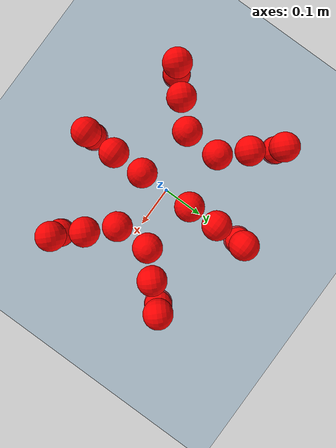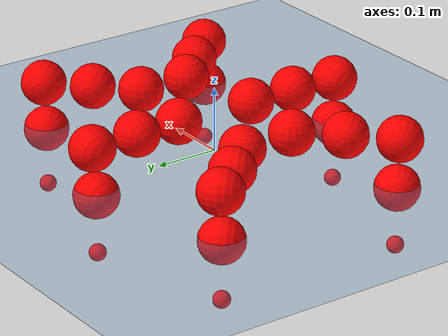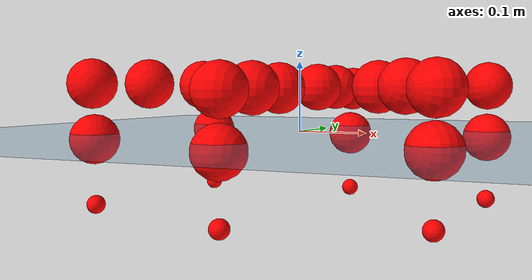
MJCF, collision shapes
<mujoco model="Golem">
  <compiler angle="radian" assetdir="assets" balanceinertia="true" inertiafromgeom="false"/>

  <option timestep="0.005" density="1.2" viscosity="2e-05"/>

  <size nkey="1"/>

  <visual>
    <quality shadowsize="8192"/>
    <map shadowclip="0.5"/>
  </visual>

  <default>
    <default class="/">
      <joint armature="0.01" damping="0.01" frictionloss="0.01"/>
      <geom contype="0" conaffinity="0" group="1" solref="-1000 -80"/>
      <site size="0.01 0.005 0.005" group="5"/>
      <general forcelimited="true" biastype="affine" gainprm="25" biasprm="0 -25 -0.5"/>
      <default class="visual">
        <geom type="mesh" group="2"/>
      </default>
      <default class="collision">
        <geom group="3"/>
      </default>
      <default class="foot">
        <geom size="0.01 0 0" condim="6" group="4" priority="1" solimp="0.015 1 0.01"/>
      </default>
      <default class="reward_collision_sphere">
        <geom group="5" rgba="1 0 0 1"/>
      </default>
    </default>
  </default>

  <asset>
    <texture type="skybox" colorspace="auto" name="//unnamed_texture_0" builtin="gradient" rgb1="0.95 0.95 0.95" rgb2="0.95 0.95 0.95" width="100" height="600"/>
    <texture type="2d" colorspace="auto" name="texplane" builtin="checker" rgb1="0.345 0.575 0.748" rgb2="0.345 0.575 0.748" markrgb="1 1 1" width="512" height="512"/>
    <material name="MatPlane" class="/" texture="texplane" texuniform="true" texrepeat="2 2" specular="0.9"/>
    <mesh name="body" class="/" file="body.stl" scale="0.001 0.001 0.001"/>
    <mesh name="coxa" class="/" file="coxa.stl" scale="0.001 0.001 0.001"/>
    <mesh name="femur" class="/" file="femur.stl" scale="0.001 0.001 0.001"/>
    <mesh name="tibia" class="/" file="tibia.stl" scale="0.001 0.001 0.001"/>
    <mesh name="tarsus" class="/" file="tarsus.stl" scale="0.001 0.001 0.001"/>
  </asset>

  <worldbody>
    <geom name="floor" class="/" size="100 100 0.125" type="plane" group="0" material="MatPlane"/>
    <light name="toplight_shadow" class="/" pos="0 0 5" dir="0.0990148 0.0990148 -0.990148" type="directional" ambient="0.04 0.04 0.04" diffuse="0.55 0.55 0.55" specular="0.12 0.12 0.12"/>
    <light name="toplight_fill" class="/" pos="0 0 5" dir="0.0990148 0.0990148 -0.990148" type="directional" castshadow="false" ambient="0.04 0.04 0.04" diffuse="0.3 0.3 0.3" specular="0.08 0.08 0.08"/>
    <body name="trunk" pos="-0.000297167 -0.000140291 -0.00206013" quat="0.999999 0.000522948 0.000505243 -0.000963814">
      <inertial pos="0.000210242 0.0023591 -0.00428306" quat="0.999944 -0.00942721 0.0024494 0.0040823" mass="2.50599" diaginertia="0.00471833 0.00189547 0.0130836"/>
      <joint name="//unnamed_joint_0" type="free"/>
      <geom name="//unnamed_geom_1" class="/" pos="0 0 0.0670018" quat="1 0 0 0" type="mesh" rgba="0.9 0.9 0.9 1" mesh="body"/>
      <site name="imu" class="/" pos="0.0996346 0.00101902 0.117343" size="0.00873174"/>
      <camera name="track" class="/" pos="0 -1.43545 0" quat="0.707107 0.707107 0 0" mode="trackcom"/>
      <camera name="ego_camera" class="/" pos="0.111136 0 0.10469" quat="-0.5 -0.5 0.5 0.5"/>
      <body name="coxa_RR" pos="-0.153989 -0.0585989 0.0688319" quat="0.38249 0.000520197 8.48381e-05 -0.923959">
        <inertial pos="-0.00170093 -0.00269917 -0.000765176" quat="0.999923 -0.0111666 0.00495103 -0.00222302" mass="0.137406" diaginertia="0.00454017 0.00189059 0.0124109"/>
        <joint name="coxa_joint_RR" class="/" pos="0 0 0" axis="-0.00464165 0.00829841 -0.999955" range="-3.18737 3.13375" armature="0.00825873" damping="0.0185236" frictionloss="0.00981001"/>
        <geom name="//unnamed_geom_2" class="/" type="mesh" rgba="0.2 0.2 0.2 1" mesh="coxa"/>
        <geom name="//unnamed_geom_3" class="reward_collision_sphere" size="0.034927" pos="-0.0256469 0 0"/>
        <body name="femur_RR" pos="0.0528652 0.00156197 0.00152058" quat="0.499977 -0.49998 0.500031 0.500013">
          <inertial pos="0.00114849 -0.00208111 0.00208848" quat="1 7.06615e-06 -0.000791883 6.27974e-05" mass="0.131589" diaginertia="0.00454583 0.00187925 0.0121594"/>
          <joint name="femur_joint_RR" class="/" pos="0 0 0" axis="0.0028439 -0.0117779 -0.999927" range="-3.11848 3.12946" armature="0.00772928" damping="0" frictionloss="0.00817471"/>
          <geom name="//unnamed_geom_4" class="/" type="mesh" rgba="0.9 0.9 0.9 1" mesh="femur"/>
          <geom name="//unnamed_geom_5" class="reward_collision_sphere" size="0.034927"/>
          <body name="tibia_RR" pos="-0.000544215 -0.0788694 -0.00264156" quat="-1.84244e-05 1 5.09447e-05 -4.15999e-05">
            <inertial pos="-0.00241376 0.00238748 -0.00208219" quat="0.999927 0.0014679 -0.00917121 -0.00774444" mass="0.130647" diaginertia="0.00428053 0.00183629 0.0121562"/>
            <joint name="tibia_joint_RR" class="/" pos="0 0 0" axis="0.0057497 -0.00177197 0.999982" range="-3.13844 3.08272" armature="0.0088821" damping="0.0174002" frictionloss="0.00837201"/>
            <geom name="//unnamed_geom_6" class="/" type="mesh" rgba="0.2 0.2 0.2 1" mesh="tibia"/>
            <geom name="//unnamed_geom_7" class="reward_collision_sphere" size="0.034927"/>
            <body name="tarsus_RR" pos="0.0775102 -0.00189332 -0.000515962" quat="0.999999 -0.000520157 0.00062877 -0.00079463">
              <inertial pos="0.053149 -0.00147353 0.00197273" quat="0.500063 0.499917 0.499933 0.500087" mass="0.134141" diaginertia="0.00457033 0.00203552 0.0129348"/>
              <joint name="tarsus_joint_RR" class="/" pos="0 0 0" axis="-0.00267939 -0.00250178 0.999993" range="-3.1445 3.16062" armature="0.00882882" damping="0" frictionloss="0.00894114"/>
              <geom name="//unnamed_geom_8" class="/" type="mesh" rgba="0.9 0.9 0.9 1" mesh="tarsus"/>
              <geom name="foot_1" class="foot" size="0.00892127" pos="0.0957483 0 0" quat="0 -0.707107 0 0.707107"/>
              <geom name="//unnamed_geom_10" class="reward_collision_sphere" size="0.034927"/>
              <geom name="//unnamed_geom_11" class="reward_collision_sphere" size="0.0130976" pos="0.0919013 0 0"/>
              <site name="foot_1" class="foot" pos="0.0957483 0 0" quat="0 -0.707107 0 0.707107" size="0.00873174"/>
            </body>
          </body>
        </body>
      </body>
      <body name="coxa_RM" pos="0.00125824 -0.0932921 0.064857" quat="0.707495 -0.000799953 -0.000210474 -0.706718">
        <inertial pos="0.000458787 -0.00274073 -0.00104993" quat="0.999985 -0.00382805 -0.00363407 0.0013982" mass="0.127806" diaginertia="0.00425402 0.001783 0.0124268"/>
        <joint name="coxa_joint_RM" class="/" pos="0 0 0" axis="0.000306421 0.00233525 -0.999997" stiffness="0.00658639" range="-3.14584 3.15039" armature="0.00777402" damping="0.0133194" frictionloss="0.00995725"/>
        <geom name="//unnamed_geom_12" class="/" type="mesh" rgba="0.2 0.2 0.2 1" mesh="coxa"/>
        <geom name="//unnamed_geom_13" class="reward_collision_sphere" size="0.034927" pos="-0.0256469 0 0"/>
        <body name="femur_RM" pos="0.0533958 0.000791615 0.000717615" quat="0.499576 -0.500113 0.500146 0.500164">
          <inertial pos="-0.000211341 -0.00284315 -0.000631241" quat="0.999956 -0.00456173 0.00193656 -0.00799174" mass="0.135409" diaginertia="0.00471881 0.00185661 0.0127588"/>
          <joint name="femur_joint_RM" class="/" pos="0 0 0" axis="-0.00708091 -0.00415413 -0.999966" range="-3.19176 3.19071" armature="0.00948672" damping="0.0242858" frictionloss="0.00907904"/>
          <geom name="//unnamed_geom_14" class="/" type="mesh" rgba="0.9 0.9 0.9 1" mesh="femur"/>
          <geom name="//unnamed_geom_15" class="reward_collision_sphere" size="0.034927"/>
          <body name="tibia_RM" pos="0.001227 -0.0792867 -0.000713525" quat="-4.31292e-05 1 -0.000259793 5.89919e-05">
            <inertial pos="-0.00145279 -0.000945804 -0.00218655" quat="0.999912 -0.0109954 -0.00717089 0.00166863" mass="0.125285" diaginertia="0.00452043 0.00184393 0.012513"/>
            <joint name="tibia_joint_RM" class="/" pos="0 0 0" axis="0.000164168 -0.000282544 1" stiffness="0.00814048" range="-3.19305 3.08829" armature="0.00749882" damping="0" frictionloss="0.00805701"/>
            <geom name="//unnamed_geom_16" class="/" type="mesh" rgba="0.2 0.2 0.2 1" mesh="tibia"/>
            <geom name="//unnamed_geom_17" class="reward_collision_sphere" size="0.034927"/>
            <body name="tarsus_RM" pos="0.073914 -0.00182565 0.00197885" quat="0.999999 0.00107794 0.000175726 0.000249608">
              <inertial pos="0.0490491 4.66652e-05 -0.0019226" quat="0.512036 0.496747 0.495125 0.495896" mass="0.133415" diaginertia="0.00456644 0.00190133 0.0125548"/>
              <joint name="tarsus_joint_RM" class="/" pos="0 0 0" axis="0.000916346 0.00218186 0.999997" range="-3.16083 3.15846" armature="0.00891377" damping="0.00307786" frictionloss="0.00880225"/>
              <geom name="//unnamed_geom_18" class="/" type="mesh" rgba="0.9 0.9 0.9 1" mesh="tarsus"/>
              <geom name="foot_2" class="foot" size="0.00797478" pos="0.0957483 0 0" quat="0 -0.707107 0 0.707107"/>
              <geom name="//unnamed_geom_20" class="reward_collision_sphere" size="0.034927"/>
              <geom name="//unnamed_geom_21" class="reward_collision_sphere" size="0.0130976" pos="0.0919013 0 0"/>
              <site name="foot_2" class="foot" pos="0.0957483 0 0" quat="0 -0.707107 0 0.707107" size="0.00873174"/>
            </body>
          </body>
        </body>
      </body>
      <body name="coxa_RF" pos="0.150829 -0.0588072 0.066682" quat="0.92389 0.000832686 0.000672936 -0.382656">
        <inertial pos="0.00213687 -0.0023261 0.000359119" quat="0.999999 0.000818444 0.00017534 0.00128193" mass="0.135007" diaginertia="0.00473743 0.00194212 0.0125017"/>
        <joint name="coxa_joint_RF" class="/" pos="0 0 0" axis="0.00329489 -0.00878989 -0.999956" range="-3.14509 3.1484" armature="0.008624" damping="0" frictionloss="0.00787953"/>
        <geom name="//unnamed_geom_22" class="/" type="mesh" rgba="0.2 0.2 0.2 1" mesh="coxa"/>
        <geom name="//unnamed_geom_23" class="reward_collision_sphere" size="0.034927" pos="-0.0256469 0 0"/>
        <body name="femur_RF" pos="0.0495414 0.00059336 0.00138578" quat="0.49961 -0.500226 0.499944 0.500219">
          <inertial pos="-0.00042177 0.00108242 -0.00217862" quat="0.999907 0.00646953 0.00953104 0.00725001" mass="0.129505" diaginertia="0.00442189 0.00182943 0.0123641"/>
          <joint name="femur_joint_RF" class="/" pos="0 0 0" axis="0.000855226 -0.00545581 -0.999985" range="-3.08961 3.1914" armature="0.0092363" damping="0.00672666" frictionloss="0.00900046"/>
          <geom name="//unnamed_geom_24" class="/" type="mesh" rgba="0.9 0.9 0.9 1" mesh="femur"/>
          <geom name="//unnamed_geom_25" class="reward_collision_sphere" size="0.034927"/>
          <body name="tibia_RF" pos="0.00113559 -0.0778419 -0.00208635" quat="6.38442e-05 1 -5.18369e-05 -5.34099e-05">
            <inertial pos="0.00195109 -0.00260401 0.000449629" quat="0.999944 -0.00336253 -0.00885975 -0.00465352" mass="0.134774" diaginertia="0.00446806 0.00189242 0.0127108"/>
            <joint name="tibia_joint_RF" class="/" pos="0 0 0" axis="-0.00287235 0.000767952 0.999996" stiffness="0.0113545" range="-3.16027 3.08624" armature="0.00889872" damping="0.00881328" frictionloss="0.00879795"/>
            <geom name="//unnamed_geom_26" class="/" type="mesh" rgba="0.2 0.2 0.2 1" mesh="tibia"/>
            <geom name="//unnamed_geom_27" class="reward_collision_sphere" size="0.034927"/>
            <body name="tarsus_RF" pos="0.0715308 -0.00248498 0.000416879" quat="0.999999 -0.00123551 6.97358e-05 -0.000666036">
              <inertial pos="0.0518227 -0.000942279 0.000395342" quat="0.499917 0.499673 0.500257 0.500152" mass="0.131753" diaginertia="0.00462786 0.001934 0.01231"/>
              <joint name="tarsus_joint_RF" class="/" pos="0 0 0" axis="0.000189645 -0.00194946 0.999998" stiffness="0.000248926" range="-3.13407 3.13603" armature="0.00870221" damping="0" frictionloss="0.00904529"/>
              <geom name="//unnamed_geom_28" class="/" type="mesh" rgba="0.9 0.9 0.9 1" mesh="tarsus"/>
              <geom name="foot_3" class="foot" size="0.0088126" pos="0.0957483 0 0" quat="0 -0.707107 0 0.707107"/>
              <geom name="//unnamed_geom_30" class="reward_collision_sphere" size="0.034927"/>
              <geom name="//unnamed_geom_31" class="reward_collision_sphere" size="0.0130976" pos="0.0919013 0 0"/>
              <site name="foot_3" class="foot" pos="0.0957483 0 0" quat="0 -0.707107 0 0.707107" size="0.00873174"/>
            </body>
          </body>
        </body>
      </body>
      <body name="coxa_LR" pos="-0.151726 0.0643708 0.0650803" quat="0.382525 3.46478e-05 4.58909e-05 0.923945">
        <inertial pos="-0.000370192 -0.00209089 -0.00242605" quat="0.9999 0.0101517 0.00503946 -0.00846446" mass="0.127308" diaginertia="0.00447129 0.00193081 0.0124533"/>
        <joint name="coxa_joint_LR" class="/" pos="0 0 0" axis="-0.00162911 0.010593 -0.999943" stiffness="0.014623" range="-3.14728 3.15094" armature="0.00955419" damping="0.0128203" frictionloss="0.00993528"/>
        <geom name="//unnamed_geom_32" class="/" type="mesh" rgba="0.2 0.2 0.2 1" mesh="coxa"/>
        <geom name="//unnamed_geom_33" class="reward_collision_sphere" size="0.034927" pos="-0.0256469 0 0"/>
        <body name="femur_LR" pos="0.0493002 -0.00237698 -0.000685987" quat="0.500702 -0.500376 0.49997 0.49895">
          <inertial pos="0.000978398 -0.00232122 -0.0017153" quat="0.999918 -0.00241705 -0.00501431 0.0115734" mass="0.133649" diaginertia="0.00444191 0.0018556 0.0122346"/>
          <joint name="femur_joint_LR" class="/" pos="0 0 0" axis="-0.00318071 0.0062341 0.999976" range="-3.12862 3.13556" armature="0.00996151" damping="0.0162808" frictionloss="0.00907456"/>
          <geom name="//unnamed_geom_34" class="/" type="mesh" rgba="0.9 0.9 0.9 1" mesh="femur"/>
          <geom name="//unnamed_geom_35" class="reward_collision_sphere" size="0.034927"/>
          <body name="tibia_LR" pos="-0.00249101 -0.0783406 -0.00343702" quat="-0.000383303 1 0.000174616 0.000138033">
            <inertial pos="0.000828041 0.00246933 0.00141844" quat="0.999999 -0.000929472 -0.000955797 -0.000647616" mass="0.137181" diaginertia="0.0045953 0.00196371 0.0134154"/>
            <joint name="tibia_joint_LR" class="/" pos="0 0 0" axis="0.00461339 0.00151389 -0.999988" range="-3.08784 3.11946" armature="0.00921162" damping="0.00582654" frictionloss="0.00997023"/>
            <geom name="//unnamed_geom_36" class="/" type="mesh" rgba="0.2 0.2 0.2 1" mesh="tibia"/>
            <geom name="//unnamed_geom_37" class="reward_collision_sphere" size="0.034927"/>
            <body name="tarsus_LR" pos="0.0747933 -0.000274759 -0.00148755" quat="1 0.000271592 -0.000120865 1.2719e-05">
              <inertial pos="0.0529937 0.000970219 -0.000737226" quat="0.499992 0.499221 0.500035 0.500751" mass="0.132191" diaginertia="0.00475675 0.00191861 0.0125634"/>
              <joint name="tarsus_joint_LR" class="/" pos="0 0 0" axis="-0.00298023 0.000553282 -0.999995" range="-3.08476 3.08521" armature="0.00744093" damping="0.0177542" frictionloss="0.0087727"/>
              <geom name="//unnamed_geom_38" class="/" type="mesh" rgba="0.9 0.9 0.9 1" mesh="tarsus"/>
              <geom name="foot_4" class="foot" size="0.00860192" pos="0.0957483 0 0" quat="0.707107 0 -0.707107 0"/>
              <geom name="//unnamed_geom_40" class="reward_collision_sphere" size="0.034927"/>
              <geom name="//unnamed_geom_41" class="reward_collision_sphere" size="0.0130976" pos="0.0919013 0 0"/>
              <site name="foot_4" class="foot" pos="0.0957483 0 0" quat="0.707107 0 -0.707107 0" size="0.00873174"/>
            </body>
          </body>
        </body>
      </body>
      <body name="coxa_LM" pos="-0.000325795 0.0905976 0.0654609" quat="0.70694 -4.16947e-05 0.00029852 0.707274">
        <inertial pos="0.000482449 -0.00219293 0.00120866" quat="0.999926 -0.000312189 0.00378348 -0.0115933" mass="0.137389" diaginertia="0.00445966 0.00189701 0.0124144"/>
        <joint name="coxa_joint_LM" class="/" pos="0 0 0" axis="-0.0015019 -0.0123859 -0.999922" range="-3.12111 3.10762" armature="0.00799747" damping="0.0206835" frictionloss="0.00865856"/>
        <geom name="//unnamed_geom_42" class="/" type="mesh" rgba="0.2 0.2 0.2 1" mesh="coxa"/>
        <geom name="//unnamed_geom_43" class="reward_collision_sphere" size="0.034927" pos="-0.0256469 0 0"/>
        <body name="femur_LM" pos="0.0495309 0.00211657 -5.8931e-05" quat="0.49996 -0.499934 0.500155 0.499952">
          <inertial pos="-0.00155668 0.00261201 -0.00287536" quat="0.999988 0.000422878 -0.00397667 -0.00270707" mass="0.133288" diaginertia="0.00438172 0.00191876 0.0123396"/>
          <joint name="femur_joint_LM" class="/" pos="0 0 0" axis="-0.0108522 0.00601854 0.999923" stiffness="0.0111063" range="-3.14226 3.14228" armature="0.00887226" damping="0" frictionloss="0.00991882"/>
          <geom name="//unnamed_geom_44" class="/" type="mesh" rgba="0.9 0.9 0.9 1" mesh="femur"/>
          <geom name="//unnamed_geom_45" class="reward_collision_sphere" size="0.034927"/>
          <body name="tibia_LM" pos="0.0030621 -0.0772736 0.000175514" quat="0.000226141 1 0.00021144 -0.000418999">
            <inertial pos="0.000160874 3.27259e-05 0.00285042" quat="0.999908 0.0120593 0.00548535 -0.00300472" mass="0.1317" diaginertia="0.00463108 0.00193267 0.0123042"/>
            <joint name="tibia_joint_LM" class="/" pos="0 0 0" axis="-0.00195993 -0.00347987 -0.999992" stiffness="0.0119384" range="-3.15898 3.18592" armature="0.00863775" damping="0" frictionloss="0.00970777"/>
            <geom name="//unnamed_geom_46" class="/" type="mesh" rgba="0.2 0.2 0.2 1" mesh="tibia"/>
            <geom name="//unnamed_geom_47" class="reward_collision_sphere" size="0.034927"/>
            <body name="tarsus_LM" pos="0.0745065 -0.00355217 -0.00269955" quat="1 1.37202e-05 3.7932e-05 -2.88433e-05">
              <inertial pos="0.0532721 -0.000846579 -0.00129565" quat="0.499878 0.500173 0.49973 0.500219" mass="0.133134" diaginertia="0.00457041 0.00190434 0.0131803"/>
              <joint name="tarsus_joint_LM" class="/" pos="0 0 0" axis="-0.00340675 -0.000410943 -0.999994" range="-3.12009 3.15082" armature="0.00874778" damping="0.00350837" frictionloss="0.00838075"/>
              <geom name="//unnamed_geom_48" class="/" type="mesh" rgba="0.9 0.9 0.9 1" mesh="tarsus"/>
              <geom name="foot_5" class="foot" size="0.00886242" pos="0.0957483 0 0" quat="0.707107 0 -0.707107 0"/>
              <geom name="//unnamed_geom_50" class="reward_collision_sphere" size="0.034927"/>
              <geom name="//unnamed_geom_51" class="reward_collision_sphere" size="0.0130976" pos="0.0919013 0 0"/>
              <site name="foot_5" class="foot" pos="0.0957483 0 0" quat="0.707107 0 -0.707107 0" size="0.00873174"/>
            </body>
          </body>
        </body>
      </body>
      <body name="coxa_LF" pos="0.149421 0.061205 0.0667219" quat="0.92388 2.59906e-06 1.21364e-06 0.382682">
        <inertial pos="0.00287497 0.00141381 0.00166644" quat="0.999949 0.00268362 0.00349014 -0.00904861" mass="0.131561" diaginertia="0.00461477 0.00191125 0.0125753"/>
        <joint name="coxa_joint_LF" class="/" pos="0 0 0" axis="-0.000191965 -7.59924e-05 -1" stiffness="0.00163543" range="-3.15412 3.09145" armature="0.00772529" damping="0.006683" frictionloss="0.00919052"/>
        <geom name="//unnamed_geom_52" class="/" type="mesh" rgba="0.2 0.2 0.2 1" mesh="coxa"/>
        <geom name="//unnamed_geom_53" class="reward_collision_sphere" size="0.034927" pos="-0.0256469 0 0"/>
        <body name="femur_LF" pos="0.0493482 -0.000999978 -0.000381141" quat="0.499909 -0.500393 0.49969 0.500007">
          <inertial pos="-0.00259747 0.00275475 0.000166848" quat="0.999949 0.00321198 -0.0072354 -0.00627816" mass="0.131064" diaginertia="0.00441703 0.00187954 0.0125968"/>
          <joint name="femur_joint_LF" class="/" pos="0 0 0" axis="-0.00891975 0.00721848 0.999934" range="-3.18524 3.12004" armature="0.00879646" damping="0" frictionloss="0.00867357"/>
          <geom name="//unnamed_geom_54" class="/" type="mesh" rgba="0.9 0.9 0.9 1" mesh="femur"/>
          <geom name="//unnamed_geom_55" class="reward_collision_sphere" size="0.034927"/>
          <body name="tibia_LF" pos="-0.0012002 -0.0755987 0.00208545" quat="-0.00063416 0.999999 0.00045139 0.00111746">
            <inertial pos="-0.00260665 4.72212e-05 0.000633601" quat="0.999987 0.00328258 0.00387783 0.000427151" mass="0.136388" diaginertia="0.0044149 0.00188676 0.0123734"/>
            <joint name="tibia_joint_LF" class="/" pos="0 0 0" axis="-0.000766568 0.00118356 -0.999999" stiffness="0.00929177" range="-3.14331 3.18347" armature="0.00838061" damping="0.00960126" frictionloss="0.00891199"/>
            <geom name="//unnamed_geom_56" class="/" type="mesh" rgba="0.2 0.2 0.2 1" mesh="tibia"/>
            <geom name="//unnamed_geom_57" class="reward_collision_sphere" size="0.034927"/>
            <body name="tarsus_LF" pos="0.0759782 -0.00201051 0.00141945" quat="1 -0.000118197 0.000242025 0.000280629">
              <inertial pos="0.048929 -0.00166878 -0.00290024" quat="0.498844 0.49886 0.500987 0.501303" mass="0.126301" diaginertia="0.00446679 0.00185839 0.0124528"/>
              <joint name="tarsus_joint_LF" class="/" pos="0 0 0" axis="0.00758495 0.00947779 -0.999926" range="-3.15388 3.19023" armature="0.00769183" damping="0.0183121" frictionloss="0.00850009"/>
              <geom name="//unnamed_geom_58" class="/" type="mesh" rgba="0.9 0.9 0.9 1" mesh="tarsus"/>
              <geom name="foot_6" class="foot" size="0.00966396" pos="0.0957483 0 0" quat="0.707107 0 -0.707107 0"/>
              <geom name="//unnamed_geom_60" class="reward_collision_sphere" size="0.034927"/>
              <geom name="//unnamed_geom_61" class="reward_collision_sphere" size="0.0130976" pos="0.0919013 0 0"/>
              <site name="foot_6" class="foot" pos="0.0957483 0 0" quat="0.707107 0 -0.707107 0" size="0.00873174"/>
            </body>
          </body>
        </body>
      </body>
    </body>
  </worldbody>

  <contact>
    <pair class="/" geom1="floor" geom2="foot_1" name="//unnamed_contact_0"/>
    <pair class="/" geom1="floor" geom2="foot_2" name="//unnamed_contact_1"/>
    <pair class="/" geom1="floor" geom2="foot_3" name="//unnamed_contact_2"/>
    <pair class="/" geom1="floor" geom2="foot_4" name="//unnamed_contact_3"/>
    <pair class="/" geom1="floor" geom2="foot_5" name="//unnamed_contact_4"/>
    <pair class="/" geom1="floor" geom2="foot_6" name="//unnamed_contact_5"/>
  </contact>

  <actuator>
    <general name="coxa_joint_RR" class="/" joint="coxa_joint_RR" forcerange="-6.62119 6.62119" gainprm="20.8654" biasprm="0 -20.8654 -0.46561"/>
    <general name="femur_joint_RR" class="/" joint="femur_joint_RR" forcerange="-7.04708 7.04708" gainprm="20.8654" biasprm="0 -20.8654 -0.46561"/>
    <general name="tibia_joint_RR" class="/" joint="tibia_joint_RR" forcerange="-5.78868 5.78868" gainprm="20.8654" biasprm="0 -20.8654 -0.46561"/>
    <general name="tarsus_joint_RR" class="/" joint="tarsus_joint_RR" forcerange="-6.83827 6.83827" gainprm="20.8654" biasprm="0 -20.8654 -0.46561"/>
    <general name="coxa_joint_RM" class="/" joint="coxa_joint_RM" forcerange="-6.6021 6.6021" gainprm="20.8654" biasprm="0 -20.8654 -0.46561"/>
    <general name="femur_joint_RM" class="/" joint="femur_joint_RM" forcerange="-6.59688 6.59688" gainprm="20.8654" biasprm="0 -20.8654 -0.46561"/>
    <general name="tibia_joint_RM" class="/" joint="tibia_joint_RM" forcerange="-6.86572 6.86572" gainprm="20.8654" biasprm="0 -20.8654 -0.46561"/>
    <general name="tarsus_joint_RM" class="/" joint="tarsus_joint_RM" forcerange="-5.79272 5.79272" gainprm="20.8654" biasprm="0 -20.8654 -0.46561"/>
    <general name="coxa_joint_RF" class="/" joint="coxa_joint_RF" forcerange="-7.00385 7.00385" gainprm="20.8654" biasprm="0 -20.8654 -0.46561"/>
    <general name="femur_joint_RF" class="/" joint="femur_joint_RF" forcerange="-6.42049 6.42049" gainprm="20.8654" biasprm="0 -20.8654 -0.46561"/>
    <general name="tibia_joint_RF" class="/" joint="tibia_joint_RF" forcerange="-6.41005 6.41005" gainprm="20.8654" biasprm="0 -20.8654 -0.46561"/>
    <general name="tarsus_joint_RF" class="/" joint="tarsus_joint_RF" forcerange="-6.35148 6.35148" gainprm="20.8654" biasprm="0 -20.8654 -0.46561"/>
    <general name="coxa_joint_LR" class="/" joint="coxa_joint_LR" forcerange="-6.87051 6.87051" gainprm="20.8654" biasprm="0 -20.8654 -0.46561"/>
    <general name="femur_joint_LR" class="/" joint="femur_joint_LR" forcerange="-6.40116 6.40116" gainprm="20.8654" biasprm="0 -20.8654 -0.46561"/>
    <general name="tibia_joint_LR" class="/" joint="tibia_joint_LR" forcerange="-7.04551 7.04551" gainprm="20.8654" biasprm="0 -20.8654 -0.46561"/>
    <general name="tarsus_joint_LR" class="/" joint="tarsus_joint_LR" forcerange="-6.80299 6.80299" gainprm="20.8654" biasprm="0 -20.8654 -0.46561"/>
    <general name="coxa_joint_LM" class="/" joint="coxa_joint_LM" forcerange="-5.77041 5.77041" gainprm="20.8654" biasprm="0 -20.8654 -0.46561"/>
    <general name="femur_joint_LM" class="/" joint="femur_joint_LM" forcerange="-6.67217 6.67217" gainprm="20.8654" biasprm="0 -20.8654 -0.46561"/>
    <general name="tibia_joint_LM" class="/" joint="tibia_joint_LM" forcerange="-6.9076 6.9076" gainprm="20.8654" biasprm="0 -20.8654 -0.46561"/>
    <general name="tarsus_joint_LM" class="/" joint="tarsus_joint_LM" forcerange="-6.65046 6.65046" gainprm="20.8654" biasprm="0 -20.8654 -0.46561"/>
    <general name="coxa_joint_LF" class="/" joint="coxa_joint_LF" forcerange="-5.69929 5.69929" gainprm="20.8654" biasprm="0 -20.8654 -0.46561"/>
    <general name="femur_joint_LF" class="/" joint="femur_joint_LF" forcerange="-5.6962 5.6962" gainprm="20.8654" biasprm="0 -20.8654 -0.46561"/>
    <general name="tibia_joint_LF" class="/" joint="tibia_joint_LF" forcerange="-6.04521 6.04521" gainprm="20.8654" biasprm="0 -20.8654 -0.46561"/>
    <general name="tarsus_joint_LF" class="/" joint="tarsus_joint_LF" forcerange="-5.80038 5.80038" gainprm="20.8654" biasprm="0 -20.8654 -0.46561"/>
  </actuator>

  <sensor>
    <gyro site="imu" name="imu_angular_velocity"/>
    <velocimeter site="imu" name="imu_linear_velocity"/>
    <framelinvel objtype="site" objname="foot_1" name="foot_1_global_linear_velocity"/>
    <framelinvel objtype="site" objname="foot_2" name="foot_2_global_linear_velocity"/>
    <framelinvel objtype="site" objname="foot_3" name="foot_3_global_linear_velocity"/>
    <framelinvel objtype="site" objname="foot_4" name="foot_4_global_linear_velocity"/>
    <framelinvel objtype="site" objname="foot_5" name="foot_5_global_linear_velocity"/>
    <framelinvel objtype="site" objname="foot_6" name="foot_6_global_linear_velocity"/>
  </sensor>

  <keyframe>
    <key name="home" qpos="0 0 0.1457 1 0 0 0 0 0 0 0 0 0 0 0 0 0 0 0 0 0 0 0 0 0 0 0 0 0 0 0"/>
  </keyframe>
</mujoco>
